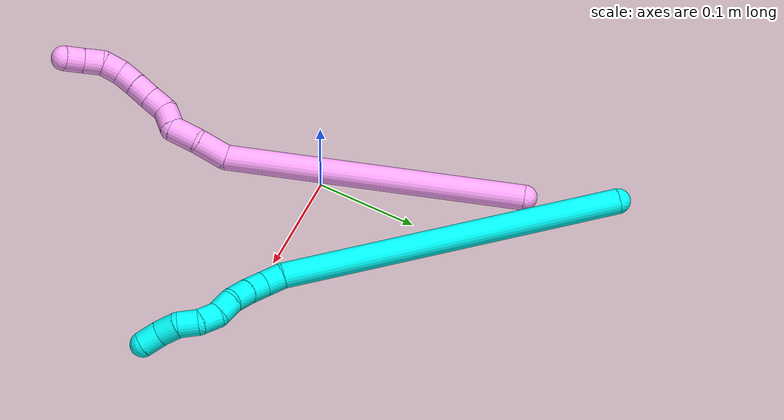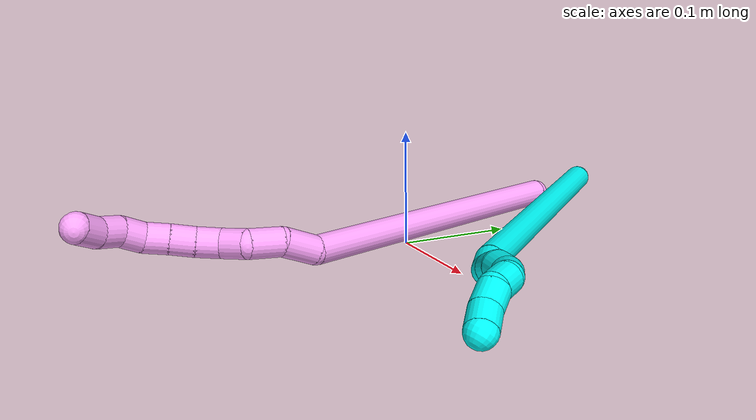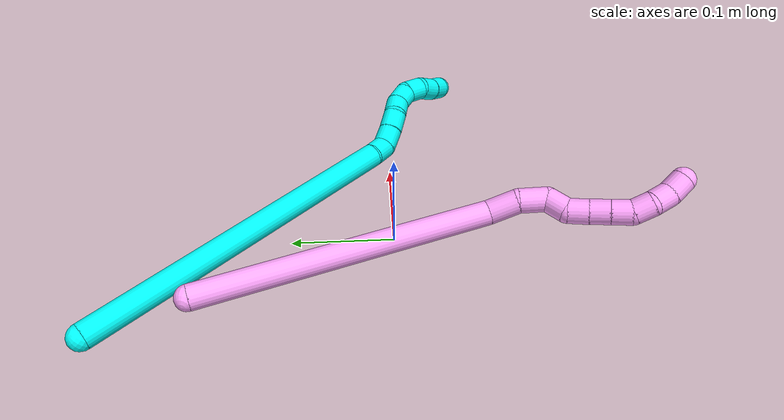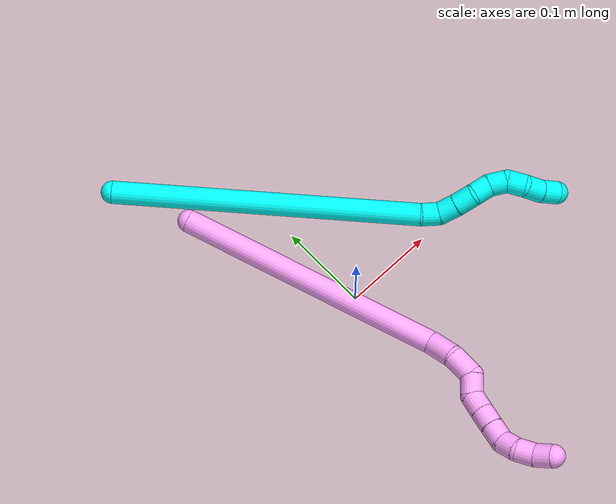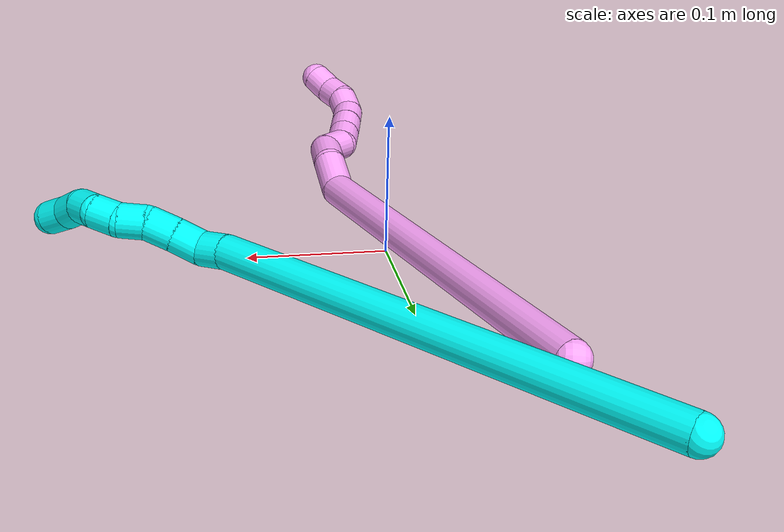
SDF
<sdf version="1.7">
 <world name="default">
  <model name="3">
   <static>0</static>
   <link name="3">
    <collision name="collision-cylinder-e_1_1_4">
     <pose>0.088177 -0.107313 -0.09501 2.29546 0.551529 1.12219</pose>
     <geometry><cylinder><radius>0.0125</radius><length>0.33656</length></cylinder></geometry>
     <surface>
      <friction><ode><mu>1.16</mu><mu2>1.16</mu2><slip1>0</slip1><slip2>0</slip2></ode></friction>
      <contact><ode><kp>1e+06</kp><kd>1</kd><max_vel>0</max_vel><min_depth>0.001</min_depth></ode></contact>
     </surface>
    </collision>
    <visual name="visual-cylinder-e_1_1_4">
     <pose>0.088177 -0.107313 -0.09501 2.29546 0.551529 1.12219</pose>
     <geometry><cylinder><radius>0.0125</radius><length>0.33656</length></cylinder></geometry>
     <material><ambient>0.003922 1 0.996078 1</ambient></material>
    </visual>
    <collision name="collision-cylinder-e_2_4_5">
     <pose>0.183066 -0.219571 -0.195884 2.4409 0.718905 1.59874</pose>
     <geometry><cylinder><radius>0.0125</radius><length>0.020386</length></cylinder></geometry>
     <surface>
      <friction><ode><mu>1.16</mu><mu2>1.16</mu2><slip1>0</slip1><slip2>0</slip2></ode></friction>
      <contact><ode><kp>1e+06</kp><kd>1</kd><max_vel>0</max_vel><min_depth>0.001</min_depth></ode></contact>
     </surface>
    </collision>
    <visual name="visual-cylinder-e_2_4_5">
     <pose>0.183066 -0.219571 -0.195884 2.4409 0.718905 1.59874</pose>
     <geometry><cylinder><radius>0.0125</radius><length>0.020386</length></cylinder></geometry>
     <material><ambient>0.003922 1 0.996078 1</ambient></material>
    </visual>
    <collision name="collision-cylinder-e_3_5_6">
     <pose>0.198262 -0.231157 -0.202523 1.6871 0.903343 0.998142</pose>
     <geometry><cylinder><radius>0.0125</radius><length>0.021602</length></cylinder></geometry>
     <surface>
      <friction><ode><mu>1.16</mu><mu2>1.16</mu2><slip1>0</slip1><slip2>0</slip2></ode></friction>
      <contact><ode><kp>1e+06</kp><kd>1</kd><max_vel>0</max_vel><min_depth>0.001</min_depth></ode></contact>
     </surface>
    </collision>
    <visual name="visual-cylinder-e_3_5_6">
     <pose>0.198262 -0.231157 -0.202523 1.6871 0.903343 0.998142</pose>
     <geometry><cylinder><radius>0.0125</radius><length>0.021602</length></cylinder></geometry>
     <material><ambient>0.003922 1 0.996078 1</ambient></material>
    </visual>
    <collision name="collision-cylinder-e_4_6_7">
     <pose>0.215641 -0.243759 -0.203607 1.62253 0.979754 1.02334</pose>
     <geometry><cylinder><radius>0.0125</radius><length>0.021425</length></cylinder></geometry>
     <surface>
      <friction><ode><mu>1.16</mu><mu2>1.16</mu2><slip1>0</slip1><slip2>0</slip2></ode></friction>
      <contact><ode><kp>1e+06</kp><kd>1</kd><max_vel>0</max_vel><min_depth>0.001</min_depth></ode></contact>
     </surface>
    </collision>
    <visual name="visual-cylinder-e_4_6_7">
     <pose>0.215641 -0.243759 -0.203607 1.62253 0.979754 1.02334</pose>
     <geometry><cylinder><radius>0.0125</radius><length>0.021425</length></cylinder></geometry>
     <material><ambient>0.003922 1 0.996078 1</ambient></material>
    </visual>
    <collision name="collision-cylinder-e_5_7_8">
     <pose>0.23384 -0.252708 -0.206045 2.18989 1.1952 1.84544</pose>
     <geometry><cylinder><radius>0.0125</radius><length>0.020003</length></cylinder></geometry>
     <surface>
      <friction><ode><mu>1.16</mu><mu2>1.16</mu2><slip1>0</slip1><slip2>0</slip2></ode></friction>
      <contact><ode><kp>1e+06</kp><kd>1</kd><max_vel>0</max_vel><min_depth>0.001</min_depth></ode></contact>
     </surface>
    </collision>
    <visual name="visual-cylinder-e_5_7_8">
     <pose>0.23384 -0.252708 -0.206045 2.18989 1.1952 1.84544</pose>
     <geometry><cylinder><radius>0.0125</radius><length>0.020003</length></cylinder></geometry>
     <material><ambient>0.003922 1 0.996078 1</ambient></material>
    </visual>
    <collision name="collision-cylinder-e_6_8_9">
     <pose>0.250371 -0.261699 -0.211602 2.08972 0.807564 1.26903</pose>
     <geometry><cylinder><radius>0.0125</radius><length>0.020002</length></cylinder></geometry>
     <surface>
      <friction><ode><mu>1.16</mu><mu2>1.16</mu2><slip1>0</slip1><slip2>0</slip2></ode></friction>
      <contact><ode><kp>1e+06</kp><kd>1</kd><max_vel>0</max_vel><min_depth>0.001</min_depth></ode></contact>
     </surface>
    </collision>
    <visual name="visual-cylinder-e_6_8_9">
     <pose>0.250371 -0.261699 -0.211602 2.08972 0.807564 1.26903</pose>
     <geometry><cylinder><radius>0.0125</radius><length>0.020002</length></cylinder></geometry>
     <material><ambient>0.003922 1 0.996078 1</ambient></material>
    </visual>
    <collision name="collision-cylinder-e_7_9_10">
     <pose>0.261334 -0.27397 -0.221875 2.40011 0.38277 0.924822</pose>
     <geometry><cylinder><radius>0.0125</radius><length>0.02001</length></cylinder></geometry>
     <surface>
      <friction><ode><mu>1.16</mu><mu2>1.16</mu2><slip1>0</slip1><slip2>0</slip2></ode></friction>
      <contact><ode><kp>1e+06</kp><kd>1</kd><max_vel>0</max_vel><min_depth>0.001</min_depth></ode></contact>
     </surface>
    </collision>
    <visual name="visual-cylinder-e_7_9_10">
     <pose>0.261334 -0.27397 -0.221875 2.40011 0.38277 0.924822</pose>
     <geometry><cylinder><radius>0.0125</radius><length>0.02001</length></cylinder></geometry>
     <material><ambient>0.003922 1 0.996078 1</ambient></material>
    </visual>
    <collision name="collision-cylinder-e_8_10_11">
     <pose>0.269258 -0.282785 -0.237438 2.85737 0.431988 1.98593</pose>
     <geometry><cylinder><radius>0.0125</radius><length>0.020002</length></cylinder></geometry>
     <surface>
      <friction><ode><mu>1.16</mu><mu2>1.16</mu2><slip1>0</slip1><slip2>0</slip2></ode></friction>
      <contact><ode><kp>1e+06</kp><kd>1</kd><max_vel>0</max_vel><min_depth>0.001</min_depth></ode></contact>
     </surface>
    </collision>
    <visual name="visual-cylinder-e_8_10_11">
     <pose>0.269258 -0.282785 -0.237438 2.85737 0.431988 1.98593</pose>
     <geometry><cylinder><radius>0.0125</radius><length>0.020002</length></cylinder></geometry>
     <material><ambient>0.003922 1 0.996078 1</ambient></material>
    </visual>
    <collision name="collision-cylinder-e_9_11_2">
     <pose>0.279331 -0.287783 -0.253867 2.83374 0.628842 2.25129</pose>
     <geometry><cylinder><radius>0.0125</radius><length>0.020011</length></cylinder></geometry>
     <surface>
      <friction><ode><mu>1.16</mu><mu2>1.16</mu2><slip1>0</slip1><slip2>0</slip2></ode></friction>
      <contact><ode><kp>1e+06</kp><kd>1</kd><max_vel>0</max_vel><min_depth>0.001</min_depth></ode></contact>
     </surface>
    </collision>
    <visual name="visual-cylinder-e_9_11_2">
     <pose>0.279331 -0.287783 -0.253867 2.83374 0.628842 2.25129</pose>
     <geometry><cylinder><radius>0.0125</radius><length>0.020011</length></cylinder></geometry>
     <material><ambient>0.003922 1 0.996078 1</ambient></material>
    </visual>
    <collision name="collision-sphere-2">
     <pose>0.285216 -0.290235 -0.261578 0 -0 0</pose>
     <geometry><sphere><radius>0.0125</radius></sphere></geometry>
     <surface>
      <friction><ode><mu>1.16</mu><mu2>1.16</mu2><slip1>0</slip1><slip2>0</slip2></ode></friction>
      <contact><ode><kp>1e+06</kp><kd>1</kd><max_vel>0</max_vel><min_depth>0.001</min_depth></ode></contact>
     </surface>
    </collision>
    <visual name="visual-sphere-2">
     <pose>0.285216 -0.290235 -0.261578 0 -0 0</pose>
     <geometry><sphere><radius>0.0125</radius></sphere></geometry>
     <material><ambient>0.003922 1 0.996078 1</ambient></material>
    </visual>
    <collision name="collision-sphere-11">
     <pose>0.273446 -0.285332 -0.246156 0 -0 0</pose>
     <geometry><sphere><radius>0.0125</radius></sphere></geometry>
     <surface>
      <friction><ode><mu>1.16</mu><mu2>1.16</mu2><slip1>0</slip1><slip2>0</slip2></ode></friction>
      <contact><ode><kp>1e+06</kp><kd>1</kd><max_vel>0</max_vel><min_depth>0.001</min_depth></ode></contact>
     </surface>
    </collision>
    <visual name="visual-sphere-11">
     <pose>0.273446 -0.285332 -0.246156 0 -0 0</pose>
     <geometry><sphere><radius>0.0125</radius></sphere></geometry>
     <material><ambient>0.003922 1 0.996078 1</ambient></material>
    </visual>
    <collision name="collision-sphere-10">
     <pose>0.265071 -0.280238 -0.22872 0 -0 0</pose>
     <geometry><sphere><radius>0.0125</radius></sphere></geometry>
     <surface>
      <friction><ode><mu>1.16</mu><mu2>1.16</mu2><slip1>0</slip1><slip2>0</slip2></ode></friction>
      <contact><ode><kp>1e+06</kp><kd>1</kd><max_vel>0</max_vel><min_depth>0.001</min_depth></ode></contact>
     </surface>
    </collision>
    <visual name="visual-sphere-10">
     <pose>0.265071 -0.280238 -0.22872 0 -0 0</pose>
     <geometry><sphere><radius>0.0125</radius></sphere></geometry>
     <material><ambient>0.003922 1 0.996078 1</ambient></material>
    </visual>
    <collision name="collision-sphere-9">
     <pose>0.257598 -0.267702 -0.215031 0 -0 0</pose>
     <geometry><sphere><radius>0.0125</radius></sphere></geometry>
     <surface>
      <friction><ode><mu>1.16</mu><mu2>1.16</mu2><slip1>0</slip1><slip2>0</slip2></ode></friction>
      <contact><ode><kp>1e+06</kp><kd>1</kd><max_vel>0</max_vel><min_depth>0.001</min_depth></ode></contact>
     </surface>
    </collision>
    <visual name="visual-sphere-9">
     <pose>0.257598 -0.267702 -0.215031 0 -0 0</pose>
     <geometry><sphere><radius>0.0125</radius></sphere></geometry>
     <material><ambient>0.003922 1 0.996078 1</ambient></material>
    </visual>
    <collision name="collision-sphere-4">
     <pose>0.176354 -0.214625 -0.19002 0 -0 0</pose>
     <geometry><sphere><radius>0.0125</radius></sphere></geometry>
     <surface>
      <friction><ode><mu>1.16</mu><mu2>1.16</mu2><slip1>0</slip1><slip2>0</slip2></ode></friction>
      <contact><ode><kp>1e+06</kp><kd>1</kd><max_vel>0</max_vel><min_depth>0.001</min_depth></ode></contact>
     </surface>
    </collision>
    <visual name="visual-sphere-4">
     <pose>0.176354 -0.214625 -0.19002 0 -0 0</pose>
     <geometry><sphere><radius>0.0125</radius></sphere></geometry>
     <material><ambient>0.003922 1 0.996078 1</ambient></material>
    </visual>
    <collision name="collision-sphere-1">
     <geometry><sphere><radius>0.0125</radius></sphere></geometry>
     <surface>
      <friction><ode><mu>1.16</mu><mu2>1.16</mu2><slip1>0</slip1><slip2>0</slip2></ode></friction>
      <contact><ode><kp>1e+06</kp><kd>1</kd><max_vel>0</max_vel><min_depth>0.001</min_depth></ode></contact>
     </surface>
    </collision>
    <visual name="visual-sphere-1">
     <geometry><sphere><radius>0.0125</radius></sphere></geometry>
     <material><ambient>0.003922 1 0.996078 1</ambient></material>
    </visual>
    <collision name="collision-sphere-8">
     <pose>0.243144 -0.255695 -0.208174 0 -0 0</pose>
     <geometry><sphere><radius>0.0125</radius></sphere></geometry>
     <surface>
      <friction><ode><mu>1.16</mu><mu2>1.16</mu2><slip1>0</slip1><slip2>0</slip2></ode></friction>
      <contact><ode><kp>1e+06</kp><kd>1</kd><max_vel>0</max_vel><min_depth>0.001</min_depth></ode></contact>
     </surface>
    </collision>
    <visual name="visual-sphere-8">
     <pose>0.243144 -0.255695 -0.208174 0 -0 0</pose>
     <geometry><sphere><radius>0.0125</radius></sphere></geometry>
     <material><ambient>0.003922 1 0.996078 1</ambient></material>
    </visual>
    <collision name="collision-sphere-5">
     <pose>0.189779 -0.224516 -0.201747 0 -0 0</pose>
     <geometry><sphere><radius>0.0125</radius></sphere></geometry>
     <surface>
      <friction><ode><mu>1.16</mu><mu2>1.16</mu2><slip1>0</slip1><slip2>0</slip2></ode></friction>
      <contact><ode><kp>1e+06</kp><kd>1</kd><max_vel>0</max_vel><min_depth>0.001</min_depth></ode></contact>
     </surface>
    </collision>
    <visual name="visual-sphere-5">
     <pose>0.189779 -0.224516 -0.201747 0 -0 0</pose>
     <geometry><sphere><radius>0.0125</radius></sphere></geometry>
     <material><ambient>0.003922 1 0.996078 1</ambient></material>
    </visual>
    <collision name="collision-sphere-6">
     <pose>0.206745 -0.237797 -0.203299 0 -0 0</pose>
     <geometry><sphere><radius>0.0125</radius></sphere></geometry>
     <surface>
      <friction><ode><mu>1.16</mu><mu2>1.16</mu2><slip1>0</slip1><slip2>0</slip2></ode></friction>
      <contact><ode><kp>1e+06</kp><kd>1</kd><max_vel>0</max_vel><min_depth>0.001</min_depth></ode></contact>
     </surface>
    </collision>
    <visual name="visual-sphere-6">
     <pose>0.206745 -0.237797 -0.203299 0 -0 0</pose>
     <geometry><sphere><radius>0.0125</radius></sphere></geometry>
     <material><ambient>0.003922 1 0.996078 1</ambient></material>
    </visual>
    <collision name="collision-sphere-7">
     <pose>0.224536 -0.24972 -0.203916 0 -0 0</pose>
     <geometry><sphere><radius>0.0125</radius></sphere></geometry>
     <surface>
      <friction><ode><mu>1.16</mu><mu2>1.16</mu2><slip1>0</slip1><slip2>0</slip2></ode></friction>
      <contact><ode><kp>1e+06</kp><kd>1</kd><max_vel>0</max_vel><min_depth>0.001</min_depth></ode></contact>
     </surface>
    </collision>
    <visual name="visual-sphere-7">
     <pose>0.224536 -0.24972 -0.203916 0 -0 0</pose>
     <geometry><sphere><radius>0.0125</radius></sphere></geometry>
     <material><ambient>0.003922 1 0.996078 1</ambient></material>
    </visual>
    <inertial>
     <pose>0.136403 -0.155991 -0.13466 0 -0 0</pose>
     <mass>0.5</mass>
     <inertia><ixx>0.003657</ixx><ixy>0</ixy><ixz>0</ixz><iyy>0.00265</iyy><iyz>0</iyz><izz>0.00034</izz></inertia>
    </inertial>
   </link>
   <pose>-0.109399 0.26892 0.011567 -0.716328 -0.025015 0.177683</pose>
  </model>
  <model name="4">
   <static>0</static>
   <link name="4">
    <collision name="collision-cylinder-e_1_1_4">
     <pose>0.042194 -0.114447 -0.083614 2.20176 0.289339 0.558725</pose>
     <geometry><cylinder><radius>0.0125</radius><length>0.295768</length></cylinder></geometry>
     <surface>
      <friction><ode><mu>1.16</mu><mu2>1.16</mu2><slip1>0</slip1><slip2>0</slip2></ode></friction>
      <contact><ode><kp>1e+06</kp><kd>1</kd><max_vel>0</max_vel><min_depth>0.001</min_depth></ode></contact>
     </surface>
    </collision>
    <visual name="visual-cylinder-e_1_1_4">
     <pose>0.042194 -0.114447 -0.083614 2.20176 0.289339 0.558725</pose>
     <geometry><cylinder><radius>0.0125</radius><length>0.295768</length></cylinder></geometry>
     <material><ambient>1 0.65098 0.996078 1</ambient></material>
    </visual>
    <collision name="collision-cylinder-e_2_4_5">
     <pose>0.094721 -0.239832 -0.172385 2.01137 0.70705 1.05413</pose>
     <geometry><cylinder><radius>0.0125</radius><length>0.031811</length></cylinder></geometry>
     <surface>
      <friction><ode><mu>1.16</mu><mu2>1.16</mu2><slip1>0</slip1><slip2>0</slip2></ode></friction>
      <contact><ode><kp>1e+06</kp><kd>1</kd><max_vel>0</max_vel><min_depth>0.001</min_depth></ode></contact>
     </surface>
    </collision>
    <visual name="visual-cylinder-e_2_4_5">
     <pose>0.094721 -0.239832 -0.172385 2.01137 0.70705 1.05413</pose>
     <geometry><cylinder><radius>0.0125</radius><length>0.031811</length></cylinder></geometry>
     <material><ambient>1 0.65098 0.996078 1</ambient></material>
    </visual>
    <collision name="collision-cylinder-e_3_5_6">
     <pose>0.110435 -0.263508 -0.18115 1.84681 0.386104 0.506014</pose>
     <geometry><cylinder><radius>0.0125</radius><length>0.028582</length></cylinder></geometry>
     <surface>
      <friction><ode><mu>1.16</mu><mu2>1.16</mu2><slip1>0</slip1><slip2>0</slip2></ode></friction>
      <contact><ode><kp>1e+06</kp><kd>1</kd><max_vel>0</max_vel><min_depth>0.001</min_depth></ode></contact>
     </surface>
    </collision>
    <visual name="visual-cylinder-e_3_5_6">
     <pose>0.110435 -0.263508 -0.18115 1.84681 0.386104 0.506014</pose>
     <geometry><cylinder><radius>0.0125</radius><length>0.028582</length></cylinder></geometry>
     <material><ambient>1 0.65098 0.996078 1</ambient></material>
    </visual>
    <collision name="collision-cylinder-e_4_6_7">
     <pose>0.118374 -0.286071 -0.179444 1.075 0.225101 0.134534</pose>
     <geometry><cylinder><radius>0.0125</radius><length>0.022918</length></cylinder></geometry>
     <surface>
      <friction><ode><mu>1.16</mu><mu2>1.16</mu2><slip1>0</slip1><slip2>0</slip2></ode></friction>
      <contact><ode><kp>1e+06</kp><kd>1</kd><max_vel>0</max_vel><min_depth>0.001</min_depth></ode></contact>
     </surface>
    </collision>
    <visual name="visual-cylinder-e_4_6_7">
     <pose>0.118374 -0.286071 -0.179444 1.075 0.225101 0.134534</pose>
     <geometry><cylinder><radius>0.0125</radius><length>0.022918</length></cylinder></geometry>
     <material><ambient>1 0.65098 0.996078 1</ambient></material>
    </visual>
    <collision name="collision-cylinder-e_5_7_8">
     <pose>0.12551 -0.305176 -0.174486 1.60909 0.458023 0.475252</pose>
     <geometry><cylinder><radius>0.0125</radius><length>0.020708</length></cylinder></geometry>
     <surface>
      <friction><ode><mu>1.16</mu><mu2>1.16</mu2><slip1>0</slip1><slip2>0</slip2></ode></friction>
      <contact><ode><kp>1e+06</kp><kd>1</kd><max_vel>0</max_vel><min_depth>0.001</min_depth></ode></contact>
     </surface>
    </collision>
    <visual name="visual-cylinder-e_5_7_8">
     <pose>0.12551 -0.305176 -0.174486 1.60909 0.458023 0.475252</pose>
     <geometry><cylinder><radius>0.0125</radius><length>0.020708</length></cylinder></geometry>
     <material><ambient>1 0.65098 0.996078 1</ambient></material>
    </visual>
    <collision name="collision-cylinder-e_6_8_9">
     <pose>0.135014 -0.323221 -0.175108 1.60118 0.511835 0.526916</pose>
     <geometry><cylinder><radius>0.0125</radius><length>0.020116</length></cylinder></geometry>
     <surface>
      <friction><ode><mu>1.16</mu><mu2>1.16</mu2><slip1>0</slip1><slip2>0</slip2></ode></friction>
      <contact><ode><kp>1e+06</kp><kd>1</kd><max_vel>0</max_vel><min_depth>0.001</min_depth></ode></contact>
     </surface>
    </collision>
    <visual name="visual-cylinder-e_6_8_9">
     <pose>0.135014 -0.323221 -0.175108 1.60118 0.511835 0.526916</pose>
     <geometry><cylinder><radius>0.0125</radius><length>0.020116</length></cylinder></geometry>
     <material><ambient>1 0.65098 0.996078 1</ambient></material>
    </visual>
    <collision name="collision-cylinder-e_7_9_10">
     <pose>0.144521 -0.340903 -0.175877 1.62717 0.473817 0.500206</pose>
     <geometry><cylinder><radius>0.0125</radius><length>0.020076</length></cylinder></geometry>
     <surface>
      <friction><ode><mu>1.16</mu><mu2>1.16</mu2><slip1>0</slip1><slip2>0</slip2></ode></friction>
      <contact><ode><kp>1e+06</kp><kd>1</kd><max_vel>0</max_vel><min_depth>0.001</min_depth></ode></contact>
     </surface>
    </collision>
    <visual name="visual-cylinder-e_7_9_10">
     <pose>0.144521 -0.340903 -0.175877 1.62717 0.473817 0.500206</pose>
     <geometry><cylinder><radius>0.0125</radius><length>0.020076</length></cylinder></geometry>
     <material><ambient>1 0.65098 0.996078 1</ambient></material>
    </visual>
    <collision name="collision-cylinder-e_8_10_11">
     <pose>0.155798 -0.356273 -0.180069 2.09021 0.73344 1.16962</pose>
     <geometry><cylinder><radius>0.0125</radius><length>0.020006</length></cylinder></geometry>
     <surface>
      <friction><ode><mu>1.16</mu><mu2>1.16</mu2><slip1>0</slip1><slip2>0</slip2></ode></friction>
      <contact><ode><kp>1e+06</kp><kd>1</kd><max_vel>0</max_vel><min_depth>0.001</min_depth></ode></contact>
     </surface>
    </collision>
    <visual name="visual-cylinder-e_8_10_11">
     <pose>0.155798 -0.356273 -0.180069 2.09021 0.73344 1.16962</pose>
     <geometry><cylinder><radius>0.0125</radius><length>0.020006</length></cylinder></geometry>
     <material><ambient>1 0.65098 0.996078 1</ambient></material>
    </visual>
    <collision name="collision-cylinder-e_9_11_12">
     <pose>0.166583 -0.369038 -0.190356 2.37819 0.420971 0.978278</pose>
     <geometry><cylinder><radius>0.0125</radius><length>0.020013</length></cylinder></geometry>
     <surface>
      <friction><ode><mu>1.16</mu><mu2>1.16</mu2><slip1>0</slip1><slip2>0</slip2></ode></friction>
      <contact><ode><kp>1e+06</kp><kd>1</kd><max_vel>0</max_vel><min_depth>0.001</min_depth></ode></contact>
     </surface>
    </collision>
    <visual name="visual-cylinder-e_9_11_12">
     <pose>0.166583 -0.369038 -0.190356 2.37819 0.420971 0.978278</pose>
     <geometry><cylinder><radius>0.0125</radius><length>0.020013</length></cylinder></geometry>
     <material><ambient>1 0.65098 0.996078 1</ambient></material>
    </visual>
    <collision name="collision-cylinder-e_10_12_2">
     <pose>0.176548 -0.37936 -0.203985 2.6235 0.628004 1.77272</pose>
     <geometry><cylinder><radius>0.0125</radius><length>0.02</length></cylinder></geometry>
     <surface>
      <friction><ode><mu>1.16</mu><mu2>1.16</mu2><slip1>0</slip1><slip2>0</slip2></ode></friction>
      <contact><ode><kp>1e+06</kp><kd>1</kd><max_vel>0</max_vel><min_depth>0.001</min_depth></ode></contact>
     </surface>
    </collision>
    <visual name="visual-cylinder-e_10_12_2">
     <pose>0.176548 -0.37936 -0.203985 2.6235 0.628004 1.77272</pose>
     <geometry><cylinder><radius>0.0125</radius><length>0.02</length></cylinder></geometry>
     <material><ambient>1 0.65098 0.996078 1</ambient></material>
    </visual>
    <collision name="collision-sphere-2">
     <pose>0.182423 -0.383367 -0.211015 0 -0 0</pose>
     <geometry><sphere><radius>0.0125</radius></sphere></geometry>
     <surface>
      <friction><ode><mu>1.16</mu><mu2>1.16</mu2><slip1>0</slip1><slip2>0</slip2></ode></friction>
      <contact><ode><kp>1e+06</kp><kd>1</kd><max_vel>0</max_vel><min_depth>0.001</min_depth></ode></contact>
     </surface>
    </collision>
    <visual name="visual-sphere-2">
     <pose>0.182423 -0.383367 -0.211015 0 -0 0</pose>
     <geometry><sphere><radius>0.0125</radius></sphere></geometry>
     <material><ambient>1 0.65098 0.996078 1</ambient></material>
    </visual>
    <collision name="collision-sphere-12">
     <pose>0.170672 -0.375352 -0.196955 0 -0 0</pose>
     <geometry><sphere><radius>0.0125</radius></sphere></geometry>
     <surface>
      <friction><ode><mu>1.16</mu><mu2>1.16</mu2><slip1>0</slip1><slip2>0</slip2></ode></friction>
      <contact><ode><kp>1e+06</kp><kd>1</kd><max_vel>0</max_vel><min_depth>0.001</min_depth></ode></contact>
     </surface>
    </collision>
    <visual name="visual-sphere-12">
     <pose>0.170672 -0.375352 -0.196955 0 -0 0</pose>
     <geometry><sphere><radius>0.0125</radius></sphere></geometry>
     <material><ambient>1 0.65098 0.996078 1</ambient></material>
    </visual>
    <collision name="collision-sphere-11">
     <pose>0.162494 -0.362724 -0.183758 0 -0 0</pose>
     <geometry><sphere><radius>0.0125</radius></sphere></geometry>
     <surface>
      <friction><ode><mu>1.16</mu><mu2>1.16</mu2><slip1>0</slip1><slip2>0</slip2></ode></friction>
      <contact><ode><kp>1e+06</kp><kd>1</kd><max_vel>0</max_vel><min_depth>0.001</min_depth></ode></contact>
     </surface>
    </collision>
    <visual name="visual-sphere-11">
     <pose>0.162494 -0.362724 -0.183758 0 -0 0</pose>
     <geometry><sphere><radius>0.0125</radius></sphere></geometry>
     <material><ambient>1 0.65098 0.996078 1</ambient></material>
    </visual>
    <collision name="collision-sphere-10">
     <pose>0.149101 -0.349822 -0.176381 0 -0 0</pose>
     <geometry><sphere><radius>0.0125</radius></sphere></geometry>
     <surface>
      <friction><ode><mu>1.16</mu><mu2>1.16</mu2><slip1>0</slip1><slip2>0</slip2></ode></friction>
      <contact><ode><kp>1e+06</kp><kd>1</kd><max_vel>0</max_vel><min_depth>0.001</min_depth></ode></contact>
     </surface>
    </collision>
    <visual name="visual-sphere-10">
     <pose>0.149101 -0.349822 -0.176381 0 -0 0</pose>
     <geometry><sphere><radius>0.0125</radius></sphere></geometry>
     <material><ambient>1 0.65098 0.996078 1</ambient></material>
    </visual>
    <collision name="collision-sphere-9">
     <pose>0.139941 -0.331985 -0.175374 0 -0 0</pose>
     <geometry><sphere><radius>0.0125</radius></sphere></geometry>
     <surface>
      <friction><ode><mu>1.16</mu><mu2>1.16</mu2><slip1>0</slip1><slip2>0</slip2></ode></friction>
      <contact><ode><kp>1e+06</kp><kd>1</kd><max_vel>0</max_vel><min_depth>0.001</min_depth></ode></contact>
     </surface>
    </collision>
    <visual name="visual-sphere-9">
     <pose>0.139941 -0.331985 -0.175374 0 -0 0</pose>
     <geometry><sphere><radius>0.0125</radius></sphere></geometry>
     <material><ambient>1 0.65098 0.996078 1</ambient></material>
    </visual>
    <collision name="collision-sphere-4">
     <pose>0.084388 -0.228894 -0.167228 0 -0 0</pose>
     <geometry><sphere><radius>0.0125</radius></sphere></geometry>
     <surface>
      <friction><ode><mu>1.16</mu><mu2>1.16</mu2><slip1>0</slip1><slip2>0</slip2></ode></friction>
      <contact><ode><kp>1e+06</kp><kd>1</kd><max_vel>0</max_vel><min_depth>0.001</min_depth></ode></contact>
     </surface>
    </collision>
    <visual name="visual-sphere-4">
     <pose>0.084388 -0.228894 -0.167228 0 -0 0</pose>
     <geometry><sphere><radius>0.0125</radius></sphere></geometry>
     <material><ambient>1 0.65098 0.996078 1</ambient></material>
    </visual>
    <collision name="collision-sphere-1">
     <geometry><sphere><radius>0.0125</radius></sphere></geometry>
     <surface>
      <friction><ode><mu>1.16</mu><mu2>1.16</mu2><slip1>0</slip1><slip2>0</slip2></ode></friction>
      <contact><ode><kp>1e+06</kp><kd>1</kd><max_vel>0</max_vel><min_depth>0.001</min_depth></ode></contact>
     </surface>
    </collision>
    <visual name="visual-sphere-1">
     <geometry><sphere><radius>0.0125</radius></sphere></geometry>
     <material><ambient>1 0.65098 0.996078 1</ambient></material>
    </visual>
    <collision name="collision-sphere-8">
     <pose>0.130088 -0.314456 -0.174841 0 -0 0</pose>
     <geometry><sphere><radius>0.0125</radius></sphere></geometry>
     <surface>
      <friction><ode><mu>1.16</mu><mu2>1.16</mu2><slip1>0</slip1><slip2>0</slip2></ode></friction>
      <contact><ode><kp>1e+06</kp><kd>1</kd><max_vel>0</max_vel><min_depth>0.001</min_depth></ode></contact>
     </surface>
    </collision>
    <visual name="visual-sphere-8">
     <pose>0.130088 -0.314456 -0.174841 0 -0 0</pose>
     <geometry><sphere><radius>0.0125</radius></sphere></geometry>
     <material><ambient>1 0.65098 0.996078 1</ambient></material>
    </visual>
    <collision name="collision-sphere-5">
     <pose>0.105053 -0.25077 -0.177542 0 -0 0</pose>
     <geometry><sphere><radius>0.0125</radius></sphere></geometry>
     <surface>
      <friction><ode><mu>1.16</mu><mu2>1.16</mu2><slip1>0</slip1><slip2>0</slip2></ode></friction>
      <contact><ode><kp>1e+06</kp><kd>1</kd><max_vel>0</max_vel><min_depth>0.001</min_depth></ode></contact>
     </surface>
    </collision>
    <visual name="visual-sphere-5">
     <pose>0.105053 -0.25077 -0.177542 0 -0 0</pose>
     <geometry><sphere><radius>0.0125</radius></sphere></geometry>
     <material><ambient>1 0.65098 0.996078 1</ambient></material>
    </visual>
    <collision name="collision-sphere-6">
     <pose>0.115816 -0.276246 -0.184758 0 -0 0</pose>
     <geometry><sphere><radius>0.0125</radius></sphere></geometry>
     <surface>
      <friction><ode><mu>1.16</mu><mu2>1.16</mu2><slip1>0</slip1><slip2>0</slip2></ode></friction>
      <contact><ode><kp>1e+06</kp><kd>1</kd><max_vel>0</max_vel><min_depth>0.001</min_depth></ode></contact>
     </surface>
    </collision>
    <visual name="visual-sphere-6">
     <pose>0.115816 -0.276246 -0.184758 0 -0 0</pose>
     <geometry><sphere><radius>0.0125</radius></sphere></geometry>
     <material><ambient>1 0.65098 0.996078 1</ambient></material>
    </visual>
    <collision name="collision-sphere-7">
     <pose>0.120932 -0.295896 -0.17413 0 -0 0</pose>
     <geometry><sphere><radius>0.0125</radius></sphere></geometry>
     <surface>
      <friction><ode><mu>1.16</mu><mu2>1.16</mu2><slip1>0</slip1><slip2>0</slip2></ode></friction>
      <contact><ode><kp>1e+06</kp><kd>1</kd><max_vel>0</max_vel><min_depth>0.001</min_depth></ode></contact>
     </surface>
    </collision>
    <visual name="visual-sphere-7">
     <pose>0.120932 -0.295896 -0.17413 0 -0 0</pose>
     <geometry><sphere><radius>0.0125</radius></sphere></geometry>
     <material><ambient>1 0.65098 0.996078 1</ambient></material>
    </visual>
    <inertial>
     <pose>0.079121 -0.194666 -0.123326 0 -0 0</pose>
     <mass>0.5</mass>
     <inertia>
      <ixx>0.002897</ixx>
      <ixy>0</ixy>
      <ixz>0</ixz>
      <iyy>0.000265</iyy>
      <iyz>0</iyz>
      <izz>0.001047</izz>
     </inertia>
    </inertial>
   </link>
   <pose>-0.0716 0.186286 0.011506 1.48865 -1.23839 -1.77523</pose>
  </model>
 </world>
</sdf>
